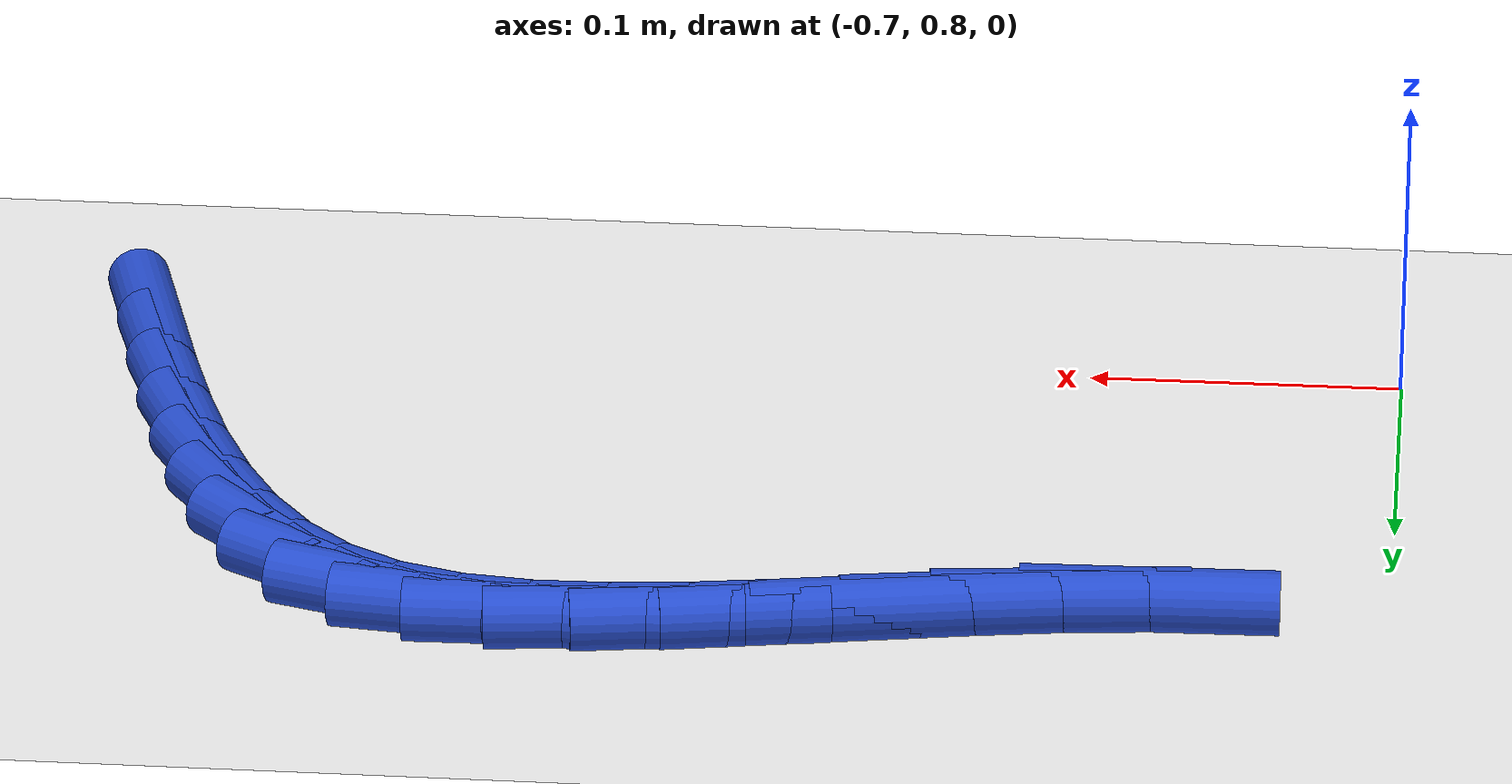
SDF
<sdf version="1.6">
 <world name="default">
  <model name="ground_plane">
   <static>1</static>
   <link name="link">
    <collision name="collision">
     <geometry><plane><normal>0 0 1</normal><size>100 100</size></plane></geometry>
     <surface><friction><ode><mu>100</mu><mu2>50</mu2></ode></friction></surface>
    </collision>
    <visual name="visual">
     <cast_shadows>0</cast_shadows>
     <geometry><plane><normal>0 0 1</normal><size>100 100</size></plane></geometry>
     <material>
      <script><uri>file://media/materials/scripts/gazebo.material</uri><name>Gazebo/WhiteGlow</name></script>
     </material>
    </visual>
   </link>
  </model>
  <model name="line">
   <link name="link_34">
    <pose>-0.29744702114476107 0.810934742548857 0.01 0 1.57 -1.2941277822955177</pose>
    <collision name="collision">
     <geometry><cylinder><radius>0.01</radius><length>0.08</length></cylinder></geometry>
    </collision>
    <visual name="visual">
     <material>
      <script><name>Gazebo/Blue</name><uri>file://media/materials/scripts/gazebo.material</uri></script>
     </material>
     <geometry><cylinder><radius>0.01</radius><length>0.08</length></cylinder></geometry>
    </visual>
   </link>
   <link name="link_35">
    <pose>-0.30541772279441165 0.8390054525010274 0.01 0 1.57 -1.2648736834470908</pose>
    <collision name="collision">
     <geometry><cylinder><radius>0.01</radius><length>0.08</length></cylinder></geometry>
    </collision>
    <visual name="visual">
     <material>
      <script><name>Gazebo/Blue</name><uri>file://media/materials/scripts/gazebo.material</uri></script>
     </material>
     <geometry><cylinder><radius>0.01</radius><length>0.08</length></cylinder></geometry>
    </visual>
   </link>
   <link name="link_36">
    <pose>-0.314051826333116 0.8663426132067444 0.01 0 1.57 -1.2181983686522753</pose>
    <collision name="collision">
     <geometry><cylinder><radius>0.01</radius><length>0.08</length></cylinder></geometry>
    </collision>
    <visual name="visual">
     <material>
      <script><name>Gazebo/Blue</name><uri>file://media/materials/scripts/gazebo.material</uri></script>
     </material>
     <geometry><cylinder><radius>0.01</radius><length>0.08</length></cylinder></geometry>
    </visual>
   </link>
   <link name="link_37">
    <pose>-0.323627022325656 0.8923639054968012 0.01 0 1.57 -1.150061695919164</pose>
    <collision name="collision">
     <geometry><cylinder><radius>0.01</radius><length>0.08</length></cylinder></geometry>
    </collision>
    <visual name="visual">
     <material>
      <script><name>Gazebo/Blue</name><uri>file://media/materials/scripts/gazebo.material</uri></script>
     </material>
     <geometry><cylinder><radius>0.01</radius><length>0.08</length></cylinder></geometry>
    </visual>
   </link>
   <link name="link_38">
    <pose>-0.334421001336813 0.916487010201991 0.01 0 1.57 -1.0543274893828696</pose>
    <collision name="collision">
     <geometry><cylinder><radius>0.01</radius><length>0.08</length></cylinder></geometry>
    </collision>
    <visual name="visual">
     <material>
      <script><name>Gazebo/Blue</name><uri>file://media/materials/scripts/gazebo.material</uri></script>
     </material>
     <geometry><cylinder><radius>0.01</radius><length>0.08</length></cylinder></geometry>
    </visual>
   </link>
   <link name="link_39">
    <pose>-0.346711453931369 0.9381296081531065 0.01 0 1.57 -0.9228395115434743</pose>
    <collision name="collision">
     <geometry><cylinder><radius>0.01</radius><length>0.08</length></cylinder></geometry>
    </collision>
    <visual name="visual">
     <material>
      <script><name>Gazebo/Blue</name><uri>file://media/materials/scripts/gazebo.material</uri></script>
     </material>
     <geometry><cylinder><radius>0.01</radius><length>0.08</length></cylinder></geometry>
    </visual>
   </link>
   <link name="link_40">
    <pose>-0.3607760706741054 0.9567093801809405 0.01 0 1.57 -0.7473552476953437</pose>
    <collision name="collision">
     <geometry><cylinder><radius>0.01</radius><length>0.08</length></cylinder></geometry>
    </collision>
    <visual name="visual">
     <material>
      <script><name>Gazebo/Blue</name><uri>file://media/materials/scripts/gazebo.material</uri></script>
     </material>
     <geometry><cylinder><radius>0.01</radius><length>0.08</length></cylinder></geometry>
    </visual>
   </link>
   <link name="link_41">
    <pose>-0.3768925421298043 0.9716440071162866 0.01 0 1.57 -0.526071035308907</pose>
    <collision name="collision">
     <geometry><cylinder><radius>0.01</radius><length>0.08</length></cylinder></geometry>
    </collision>
    <visual name="visual">
     <material>
      <script><name>Gazebo/Blue</name><uri>file://media/materials/scripts/gazebo.material</uri></script>
     </material>
     <geometry><cylinder><radius>0.01</radius><length>0.08</length></cylinder></geometry>
    </visual>
   </link>
   <link name="link_42">
    <pose>-0.39533720538927836 0.9823539254431387 0.01 0 1.57 -0.29382816515059773</pose>
    <collision name="collision">
     <geometry><cylinder><radius>0.01</radius><length>0.08</length></cylinder></geometry>
    </collision>
    <visual name="visual">
     <material>
      <script><name>Gazebo/Blue</name><uri>file://media/materials/scripts/gazebo.material</uri></script>
     </material>
     <geometry><cylinder><radius>0.01</radius><length>0.08</length></cylinder></geometry>
    </visual>
   </link>
   <link name="link_43">
    <pose>-0.4161881748228289 0.9886631502048843 0.01 0 1.57 -0.11106326772097562</pose>
    <collision name="collision">
     <geometry><cylinder><radius>0.01</radius><length>0.08</length></cylinder></geometry>
    </collision>
    <visual name="visual">
     <material>
      <script><name>Gazebo/Blue</name><uri>file://media/materials/scripts/gazebo.material</uri></script>
     </material>
     <geometry><cylinder><radius>0.01</radius><length>0.08</length></cylinder></geometry>
    </visual>
   </link>
   <link name="link_44">
    <pose>-0.43911850567519245 0.9912203908994147 0.01 0 1.57 0.01807580407839804</pose>
    <collision name="collision">
     <geometry><cylinder><radius>0.01</radius><length>0.08</length></cylinder></geometry>
    </collision>
    <visual name="visual">
     <material>
      <script><name>Gazebo/Blue</name><uri>file://media/materials/scripts/gazebo.material</uri></script>
     </material>
     <geometry><cylinder><radius>0.01</radius><length>0.08</length></cylinder></geometry>
    </visual>
   </link>
   <link name="link_45">
    <pose>-0.46375178374650516 0.9907750760902 0.01 0 1.57 0.10357492263722988</pose>
    <collision name="collision">
     <geometry><cylinder><radius>0.01</radius><length>0.08</length></cylinder></geometry>
    </collision>
    <visual name="visual">
     <material>
      <script><name>Gazebo/Blue</name><uri>file://media/materials/scripts/gazebo.material</uri></script>
     </material>
     <geometry><cylinder><radius>0.01</radius><length>0.08</length></cylinder></geometry>
    </visual>
   </link>
   <link name="link_46">
    <pose>-0.4897115948369035 0.9880766343407078 0.01 0 1.57 0.15490473094127422</pose>
    <collision name="collision">
     <geometry><cylinder><radius>0.01</radius><length>0.08</length></cylinder></geometry>
    </collision>
    <visual name="visual">
     <material>
      <script><name>Gazebo/Blue</name><uri>file://media/materials/scripts/gazebo.material</uri></script>
     </material>
     <geometry><cylinder><radius>0.01</radius><length>0.08</length></cylinder></geometry>
    </visual>
   </link>
   <link name="link_47">
    <pose>-0.516621524746523 0.9838744942144068 0.01 0 1.57 0.17842264621961873</pose>
    <collision name="collision">
     <geometry><cylinder><radius>0.01</radius><length>0.08</length></cylinder></geometry>
    </collision>
    <visual name="visual">
     <material>
      <script><name>Gazebo/Blue</name><uri>file://media/materials/scripts/gazebo.material</uri></script>
     </material>
     <geometry><cylinder><radius>0.01</radius><length>0.08</length></cylinder></geometry>
    </visual>
   </link>
   <link name="link_48">
    <pose>-0.5441051592755005 0.9789180842747656 0.01 0 1.57 0.1773469686632341</pose>
    <collision name="collision">
     <geometry><cylinder><radius>0.01</radius><length>0.08</length></cylinder></geometry>
    </collision>
    <visual name="visual">
     <material>
      <script><name>Gazebo/Blue</name><uri>file://media/materials/scripts/gazebo.material</uri></script>
     </material>
     <geometry><cylinder><radius>0.01</radius><length>0.08</length></cylinder></geometry>
    </visual>
   </link>
   <link name="link_49">
    <pose>-0.5717860842239714 0.9739568330852524 0.01 0 1.57 0.1521384157351567</pose>
    <collision name="collision">
     <geometry><cylinder><radius>0.01</radius><length>0.08</length></cylinder></geometry>
    </collision>
    <visual name="visual">
     <material>
      <script><name>Gazebo/Blue</name><uri>file://media/materials/scripts/gazebo.material</uri></script>
     </material>
     <geometry><cylinder><radius>0.01</radius><length>0.08</length></cylinder></geometry>
    </visual>
   </link>
   <link name="link_50">
    <pose>-0.5992878853920727 0.9697401692093358 0.01 0 1.57 0.10069815967747947</pose>
    <collision name="collision">
     <geometry><cylinder><radius>0.01</radius><length>0.08</length></cylinder></geometry>
    </collision>
    <visual name="visual">
     <material>
      <script><name>Gazebo/Blue</name><uri>file://media/materials/scripts/gazebo.material</uri></script>
     </material>
     <geometry><cylinder><radius>0.01</radius><length>0.08</length></cylinder></geometry>
    </visual>
   </link>
   <link name="link_51">
    <pose>-0.62623414857994 0.9670175212104848 0.01 0 1.57 0.022690435234517782</pose>
    <collision name="collision">
     <geometry><cylinder><radius>0.01</radius><length>0.08</length></cylinder></geometry>
    </collision>
    <visual name="visual">
     <material>
      <script><name>Gazebo/Blue</name><uri>file://media/materials/scripts/gazebo.material</uri></script>
     </material>
     <geometry><cylinder><radius>0.01</radius><length>0.08</length></cylinder></geometry>
    </visual>
   </link>
  </model>
 </world>
</sdf>
